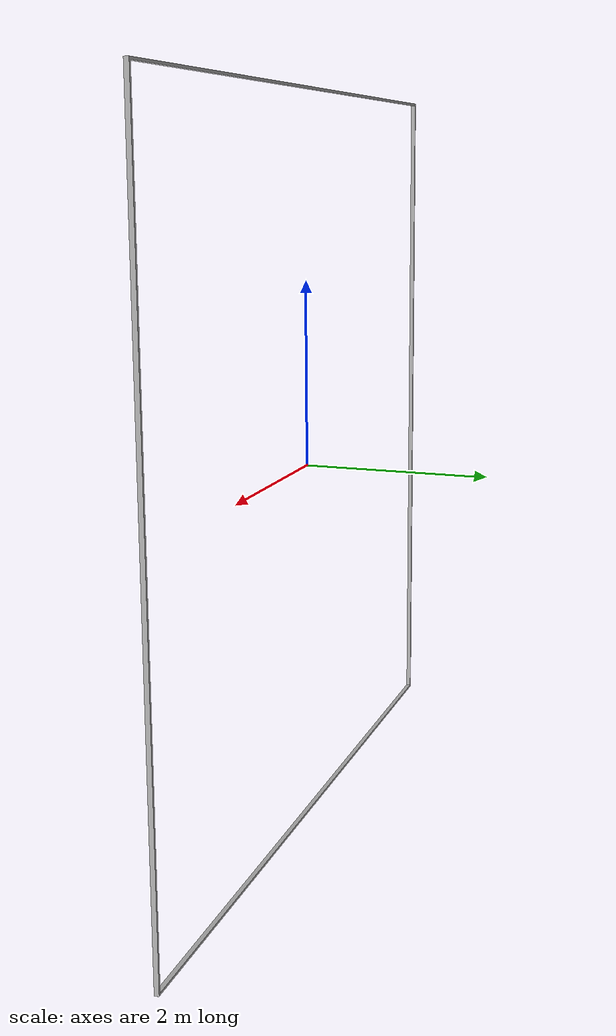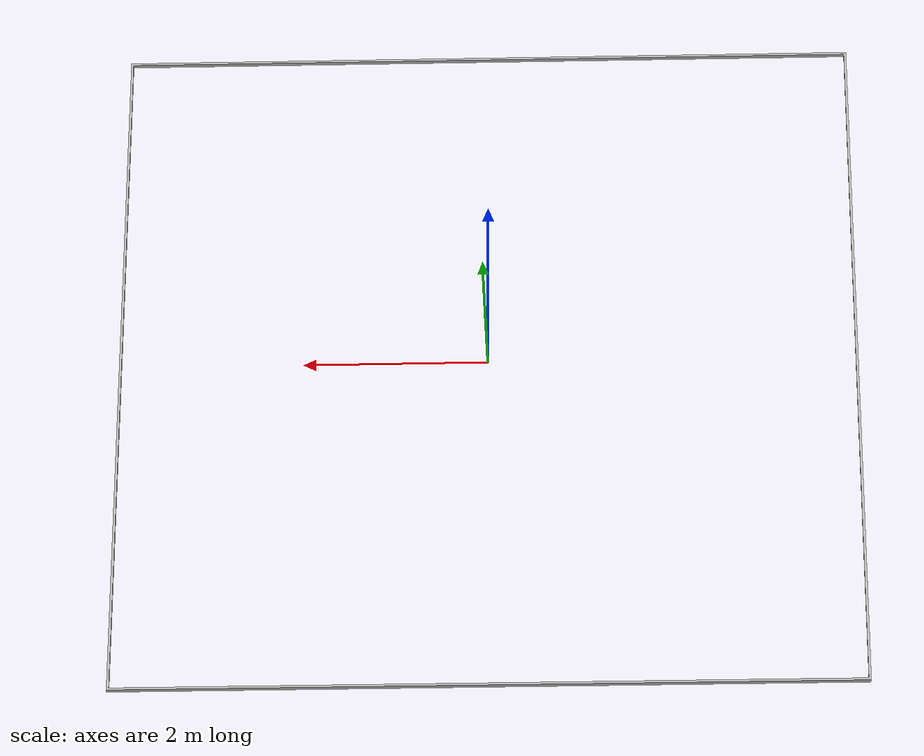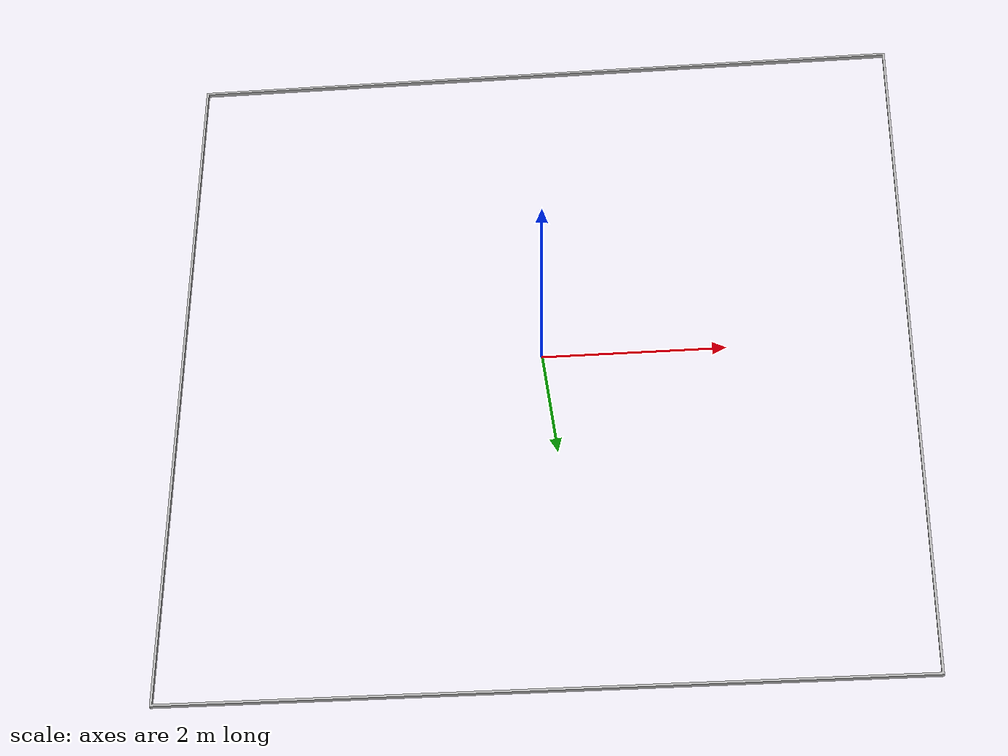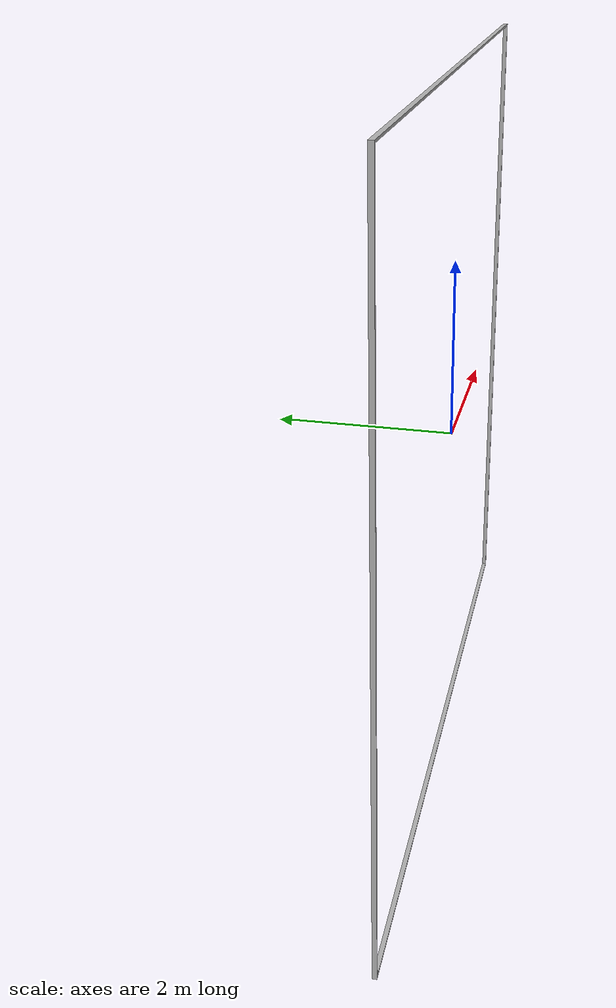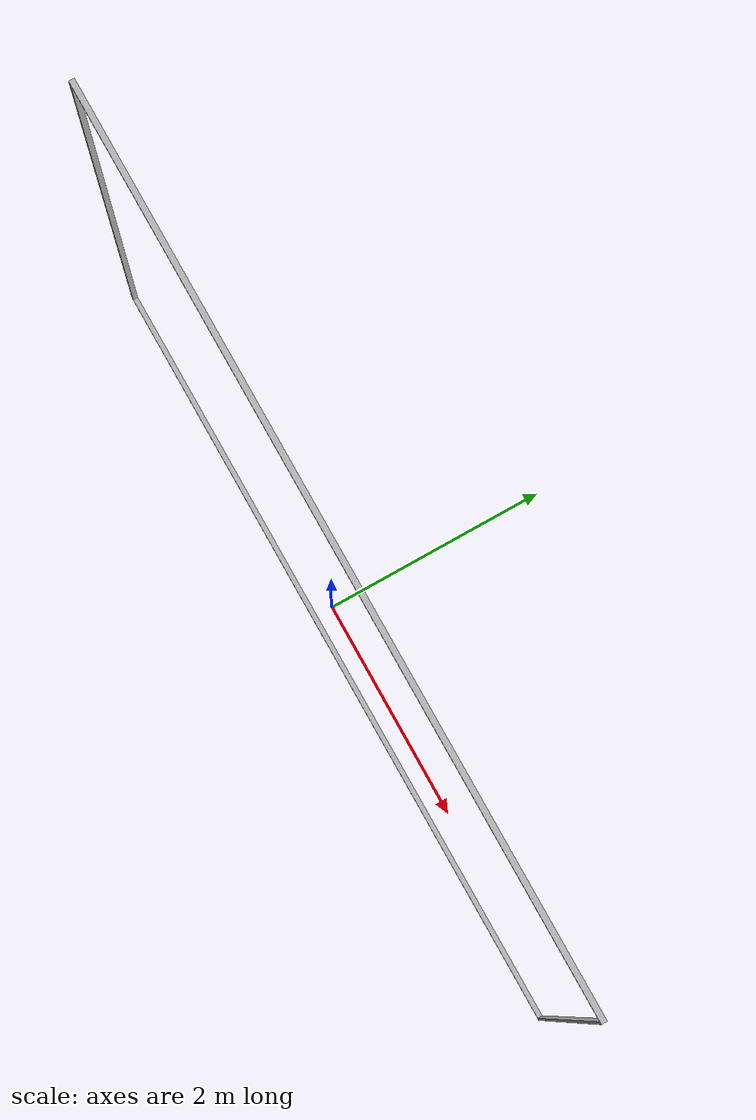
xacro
<?xml version="1.0" ?>
<robot name="urdf_moat" xmlns:xacro="http://www.ros.org/wiki/xacro">

<xacro:include filename="$(find urdf_moat_description)/urdf/materials.xacro" />
<xacro:include filename="$(find urdf_moat_description)/urdf/urdf_moat.trans" />
<xacro:include filename="$(find urdf_moat_description)/urdf/urdf_moat.gazebo" />
<link name="base_link">
  <inertial>
    <origin xyz="3.736968324475989e-15 0.025000000000000116 6.399558255665131e-14" rpy="0 0 0"/>
    <mass value="313.0187499999927"/>
    <inertia ixx="3318.129174" iyy="6636.127924" izz="3318.129174" ixy="0.0" iyz="0.0" ixz="0.0"/>
  </inertial>
  <visual>
    <origin xyz="0 0 0" rpy="0 0 0"/>
    <geometry>
      <mesh filename="package://urdf_moat_description/meshes/base_link.stl" scale="0.001 0.001 0.001"/>
    </geometry>
    <material name="silver"/>
  </visual>
  <collision>
    <origin xyz="0 0 0" rpy="0 0 0"/>
    <geometry>
      <mesh filename="package://urdf_moat_description/meshes/base_link.stl" scale="0.001 0.001 0.001"/>
    </geometry>
  </collision>
</link>

</robot>

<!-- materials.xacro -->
<robot name="urdf_moat" xmlns:xacro="http://www.ros.org/wiki/xacro" >

<material name="silver">
  <color rgba="0.700 0.700 0.700 1.000"/>
</material>

</robot>

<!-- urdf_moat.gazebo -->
<robot name="urdf_moat" xmlns:xacro="http://www.ros.org/wiki/xacro" >

<xacro:property name="body_color" value="Gazebo/Silver" />

<gazebo>
  <plugin name="control" filename="libgazebo_ros_control.so"/>
</gazebo>
<gazebo reference="base_link">
  <material>${body_color}</material>
  <mu1>0.2</mu1>
  <mu2>0.2</mu2>
  <selfCollide>true</selfCollide>
  <gravity>true</gravity>
</gazebo>

</robot>
